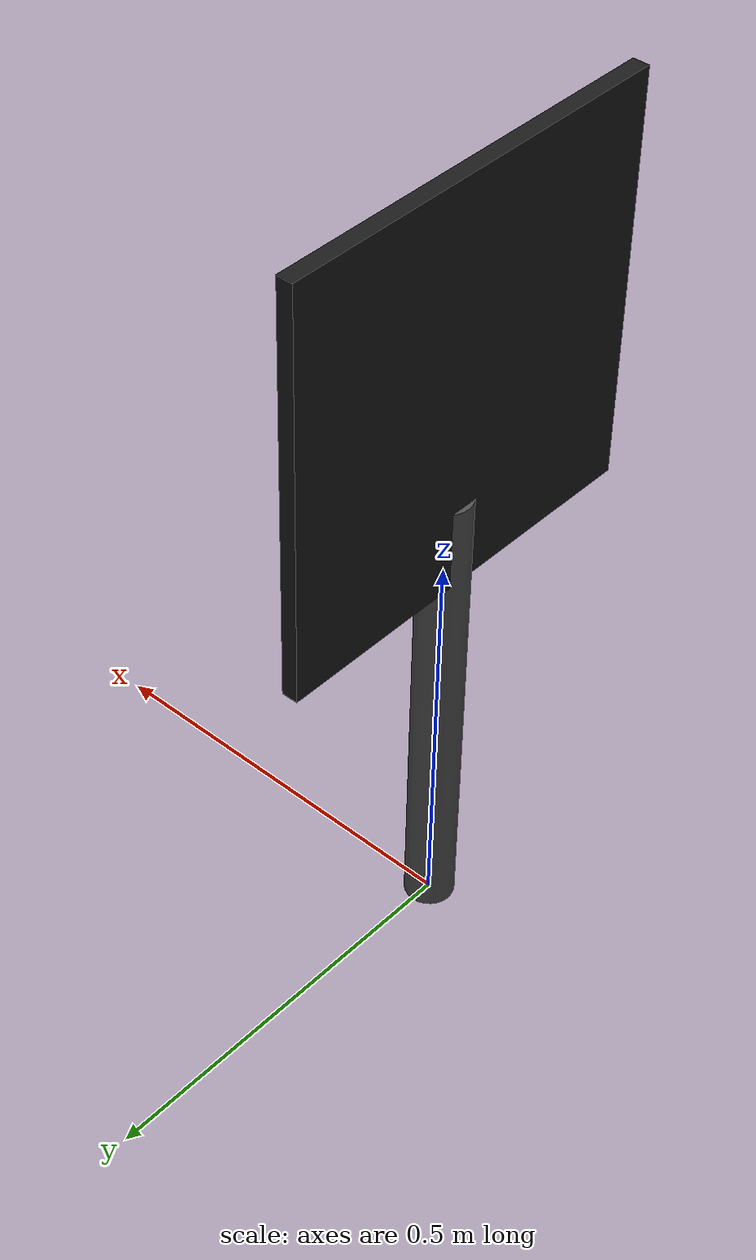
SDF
<?xml version="1.0" ?>
<sdf version="1.11">
  <!-- ArUco marker board id=1: stand pole + textured board facing +X -->
  <model name="aruco_marker_1">
    <static>true</static>
    <link name="link">
      <!-- stand pole -->
      <collision name="pole_collision">
        <pose>0 0 0.3 0 0 0</pose>
        <geometry><cylinder><radius>0.03</radius><length>0.6</length></cylinder></geometry>
      </collision>
      <visual name="pole_visual">
        <pose>0 0 0.3 0 0 0</pose>
        <geometry><cylinder><radius>0.03</radius><length>0.6</length></cylinder></geometry>
        <material><diffuse>0.3 0.3 0.3 1</diffuse></material>
      </visual>
      <!-- board backing 0.5 x 0.05 x 0.5 at 0.75m -->
      <collision name="board_collision">
        <pose>0 0 0.75 0 0 0</pose>
        <geometry><box><size>0.05 0.5 0.5</size></box></geometry>
      </collision>
      <visual name="board_back">
        <pose>-0.014 0 0.75 0 0 0</pose>
        <geometry><box><size>0.02 0.5 0.5</size></box></geometry>
        <material><diffuse>0.1 0.1 0.1 1</diffuse></material>
      </visual>
      <!-- ArUco textured face (+X side). Thin plane so camera sees marker_1.png -->
      <visual name="marker_face">
        <pose>0.001 0 0.75 0 0 0</pose>
        <geometry><plane><normal>1 0 0</normal><size>0.4 0.4</size></plane></geometry>
        <material>
          <diffuse>1 1 1 1</diffuse>
          <specular>0 0 0 1</specular>
          <pbr>
            <metal>
              <albedo_map>model://aruco_marker_1/materials/textures/marker_1.png</albedo_map>
              <roughness>0.9</roughness>
              <metalness>0.0</metalness>
            </metal>
          </pbr>
          <script>
            <uri>model://aruco_marker_1/materials/scripts</uri>
            <uri>model://aruco_marker_1/materials/textures</uri>
            <name>ArucoMarker1</name>
          </script>
        </material>
      </visual>
    </link>
  </model>
</sdf>
